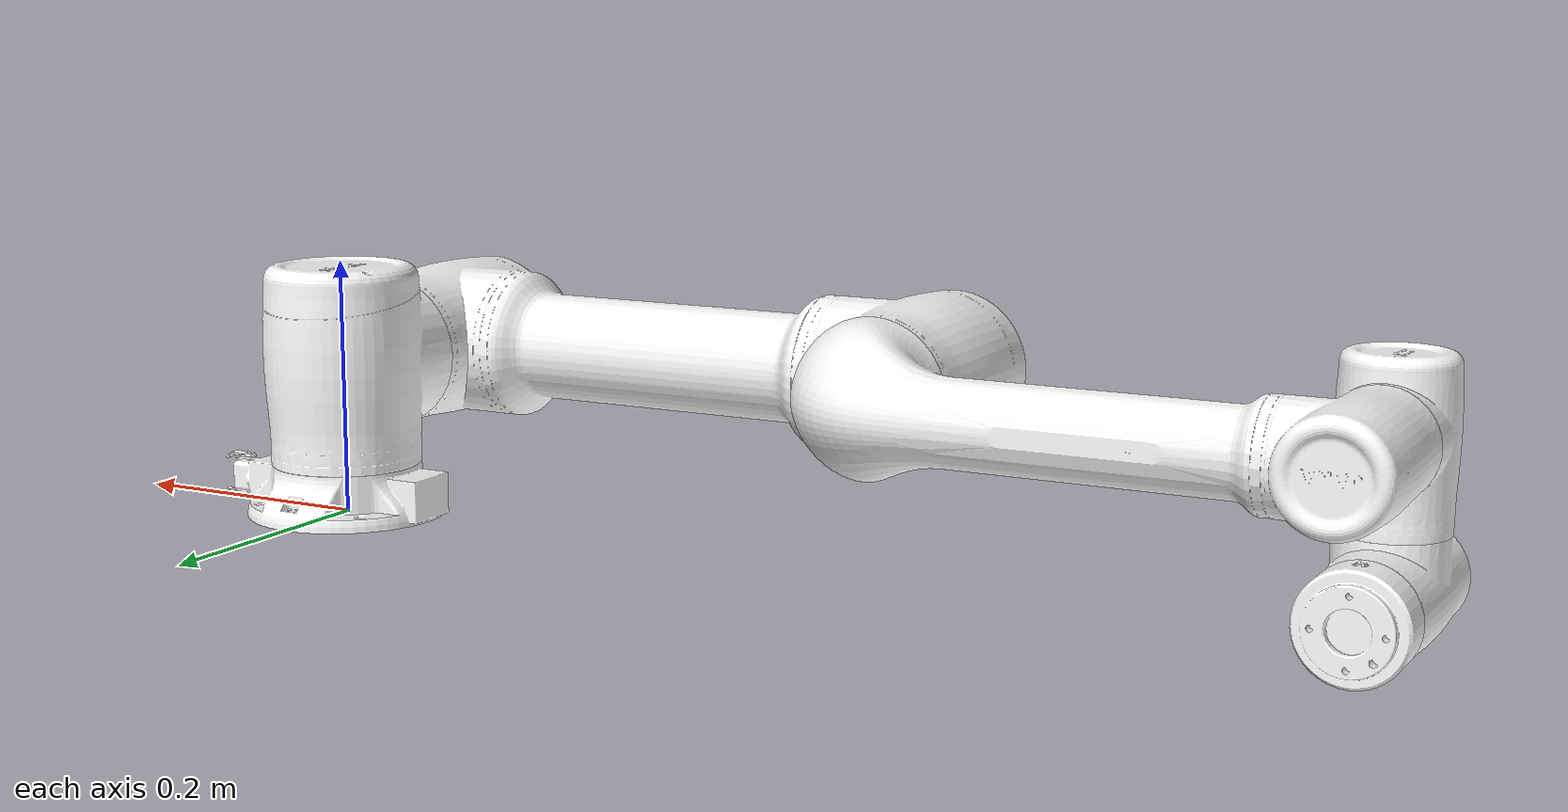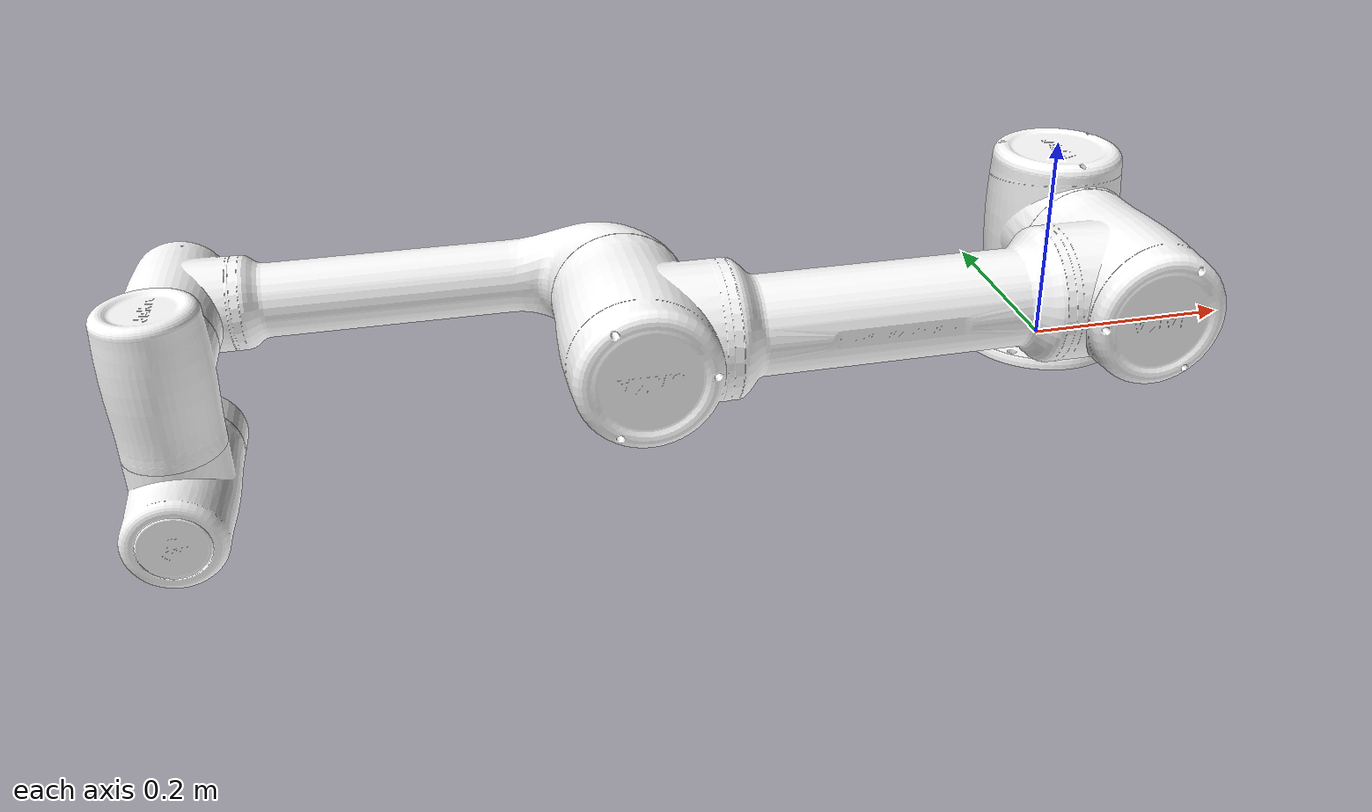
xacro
<?xml version="1.0" encoding="utf-8"?>

<robot name="jaka_zu5" xmlns:xacro="http://wiki.ros.org/xacro">

  <xacro:include filename="$(find jaka_description)/urdf/jaka_zu5/arm_body.xacro" />

  <!-- Macro for inertia matrix -->
  <xacro:macro name="sphere_inertial_matrix" params="m r">
    <inertial>
      <mass value="${m}" />
        <inertia ixx="${2*m*r*r/5}" ixy="0" ixz="0" iyy="${2*m*r*r/5}" iyz="0"  izz="${2*m*r*r/5}" />
    </inertial>
  </xacro:macro>

  <xacro:macro name="cylinder_inertial_matrix" params="m r h">
    <inertial>
      <mass value="${m}" />
        <inertia ixx="${m*(3*r*r+h*h)/12}" ixy = "0" ixz = "0" iyy="${m*(3*r*r+h*h)/12}" iyz = "0" izz="${m*r*r/2}" />
    </inertial>
  </xacro:macro>

  <xacro:macro name="box_inertial_matrix" params="m w h d">
    <inertial>
      <mass value="${m}" />
        <inertia ixx="${m*(h*h+d*d)/12}" ixy = "0" ixz = "0" iyy="${m*(w*w+d*d)/12}" iyz = "0" izz="${m*(w*w+h*h)/12}" />
    </inertial>
  </xacro:macro>

  <!-- ZU5 -->
  <link name="world" />

  <joint name="world_joint" type="fixed">
      <parent link="world" />
      <child link = "base_footprint" />
      <origin xyz="0 0 0" rpy="0 0 0" />
  </joint>

  <link name="base_footprint" >
    </link >

  <xacro:arm_body parent_prefix = "base_footprint">
    <origin xyz="0 0 0" rpy="0 0 0" />
  </xacro:arm_body>

</robot>

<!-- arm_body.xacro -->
<robot xmlns:xacro="http://ros.org/wiki/xacro" name="arm_body">
  <xacro:macro name="arm_body" params="parent_prefix *joint_pose">

  <xacro:arg name="default_velocity" default="1" />

  <link name="arm_base_link">
    <inertial>
      <origin
        xyz="0.00096495 6.33210000011972E-08 0.019553"
        rpy="0 0 0" />
      <mass
        value="0.5146" />
      <inertia
        ixx="0.00062137"
        ixy="-1.25310000000002E-08"
        ixz="3.2162E-06"
        iyy="0.00086635"
        iyz="1.01950000029785E-10"
        izz="0.0013528" />
    </inertial>
    <visual>
      <origin
        xyz="0 0 0"
        rpy="1.5707963267949 0 0" />
      <geometry>
        <mesh
          filename="package://jaka_description/meshes/jaka_zu5_meshes/link_0.STL" />
      </geometry>
      <material
        name="">
        <color
          rgba="1 1 1 1" />
      </material>
    </visual>
    <collision>
      <origin
        xyz="0 0 0"
        rpy="1.5707963267949 0 0" />
      <geometry>
        <mesh
          filename="package://jaka_description/meshes/jaka_zu5_meshes/link_0.STL" />
      </geometry>
    </collision>
  </link>

  <joint name="arm_base_joint" type="fixed">
    <xacro:insert_block name="joint_pose"/>
    <parent link="${parent_prefix}" />
    <child link="arm_base_link" />
    <axis xyz="0 0 0" />
  </joint>

  <link name="shoulder_pan_link">
    <inertial>
      <origin
        xyz="5.1683E-07 -0.0033223 -0.001511"
        rpy="0 0 0" />
      <mass
        value="1.9282" />
      <inertia
        ixx="0.0056433"
        ixy="5.7032E-08"
        ixz="-6.2225E-08"
        iyy="0.0054898"
        iyz="2.0134999999999E-06"
        izz="0.0038887" />
    </inertial>
    <visual>
      <origin
        xyz="0 0 0"
        rpy="1.5707963267949 0 0" />
      <geometry>
        <mesh
          filename="package://jaka_description/meshes/jaka_zu5_meshes/link_1.STL" />
      </geometry>
      <material
        name="">
        <color
          rgba="1 1 1 1" />
      </material>
    </visual>
    <collision>
      <origin
        xyz="0 0 0"
        rpy="1.5707963267949 0 0" />
      <geometry>
        <mesh
          filename="package://jaka_description/meshes/jaka_zu5_meshes/link_1.STL" />
      </geometry>
    </collision>
  </link>

  <joint name="shoulder_pan_joint" type="continuous">
    <origin xyz="0 0 0.12015" rpy="0 0 0" />
    <parent link="arm_base_link" />
    <child link="shoulder_pan_link" />
    <axis xyz="0 0 1" />
    <limit lower="-3" upper="3" effort="49" velocity="$(arg default_velocity)" />
  </joint>

  <link name="shoulder_lift_link">
    <inertial>
      <origin
        xyz="-0.215 -2.05689999912349E-08 0.14315"
        rpy="0 0 0" />
      <mass
        value="5.8409" />
      <inertia
        ixx="0.013221"
        ixy="4.5164E-07"
        ixz="-4.5411E-08"
        iyy="0.20339"
        iyz="-3.02220000002149E-08"
        izz="0.19988" />
    </inertial>
    <visual>
      <origin
        xyz="0 0 0"
        rpy="1.5707963267949 0 0" />
      <geometry>
        <mesh
          filename="package://jaka_description/meshes/jaka_zu5_meshes/link_2.STL" />
      </geometry>
      <material
        name="">
        <color
          rgba="1 1 1 1" />
      </material>
    </visual>
    <collision>
      <origin
        xyz="0 0 0"
        rpy="1.5707963267949 0 0" />
      <geometry>
        <mesh
          filename="package://jaka_description/meshes/jaka_zu5_meshes/link_2.STL" />
      </geometry>
    </collision>
  </link>

  <joint name="shoulder_lift_joint" type="continuous">
    <origin xyz="0 0 0" rpy="1.57079 0 0" />
    <parent link="shoulder_pan_link" />
    <child link="shoulder_lift_link" />
    <axis xyz="0 0 -1" />
    <limit lower="-3" upper="3" effort="49" velocity="$(arg default_velocity)" />
  </joint>

  <link name="elbow_link">
    <inertial>
      <origin
        xyz="-0.19088 -3.84559999999352E-07 0.010588"
        rpy="0 0 0" />
      <mass
        value="2.3018" />
      <inertia
        ixx="0.0028116"
        ixy="2.56400000000176E-07"
        ixz="-0.0028806"
        iyy="0.053035"
        iyz="-6.48900000004372E-09"
        izz="0.052321" />
    </inertial>
    <visual>
      <origin
        xyz="0 0 0"
        rpy="1.5707963267949 0 0" />
      <geometry>
        <mesh
          filename="package://jaka_description/meshes/jaka_zu5_meshes/link_3.STL" />
      </geometry>
      <material
        name="">
        <color
          rgba="1 1 1 1" />
      </material>
    </visual>
    <collision>
      <origin
        xyz="0 0 0"
        rpy="1.5707963267949 0 0" />
      <geometry>
        <mesh
          filename="package://jaka_description/meshes/jaka_zu5_meshes/link_3.STL" />
      </geometry>
    </collision>
  </link>

  <joint name="elbow_joint" type="continuous">
    <origin xyz="-0.430 0 0" rpy="0 0 0" />
    <parent link="shoulder_lift_link" />
    <child link="elbow_link" />
    <axis xyz="0 0 -1" />
    <limit lower="-3" upper="3" effort="49" velocity="$(arg default_velocity)" />
  </joint>

  <link name="wrist_1_link">
    <inertial>
      <origin
        xyz="4.1023E-07 -0.0057996 -0.0026718"
        rpy="0 0 0" />
      <mass
        value="0.70739" />
      <inertia
        ixx="0.0011791"
        ixy="5.5084E-09"
        ixz="1.4807E-09"
        iyy="0.00066568"
        iyz="-1.0639E-05"
        izz="0.0011425" />
    </inertial>
    <visual>
      <origin
        xyz="0 0 0"
        rpy="1.5707963267949 0 0" />
      <geometry>
        <mesh
          filename="package://jaka_description/meshes/jaka_zu5_meshes/link_4.STL" />
      </geometry>
      <material
        name="">
        <color
          rgba="1 1 1 1" />
      </material>
    </visual>
    <collision>
      <origin
        xyz="0 0 0"
        rpy="1.5707963267949 0 0" />
      <geometry>
        <mesh
          filename="package://jaka_description/meshes/jaka_zu5_meshes/link_4.STL" />
      </geometry>
    </collision>
  </link>

  <joint name="wrist_1_joint" type="continuous">
    <origin xyz="-0.3685 0 0.114" rpy="0 0 0" />
    <parent link="elbow_link" />
    <child link="wrist_1_link" />
    <axis xyz="0 0 -1" />
    <limit lower="-3" upper="3" effort="11" velocity="$(arg default_velocity)" />
  </joint>

  <link name="wrist_2_link">
    <inertial>
      <origin
        xyz="-3.0743E-08 -0.0028896 -0.0023422"
        rpy="0 0 0" />
      <mass
        value="0.80693" />
      <inertia
        ixx="0.001655"
        ixy="1.0299E-08"
        ixz="-1.2235E-08"
        iyy="0.0007447"
        iyz="-5.79109999999995E-06"
        izz="0.0016178" />
    </inertial>
    <visual>
      <origin
        xyz="0 0 0"
        rpy="1.5707963267949 0 0" />
      <geometry>
        <mesh
          filename="package://jaka_description/meshes/jaka_zu5_meshes/link_5.STL" />
      </geometry>
      <material
        name="">
        <color
          rgba="1 1 1 1" />
      </material>
    </visual>
    <collision>
      <origin
        xyz="0 0 0"
        rpy="1.5707963267949 0 0" />
      <geometry>
        <mesh
          filename="package://jaka_description/meshes/jaka_zu5_meshes/link_5.STL" />
      </geometry>
    </collision>
  </link>

  <joint name="wrist_2_joint" type="continuous">
    <origin xyz="0 -0.1135 0" rpy="1.57079 3.1415926 0" />
    <parent link="wrist_1_link" />
    <child link="wrist_2_link" />
    <axis xyz="0 0 1" />
    <limit lower="-3" upper="3" effort="11" velocity="$(arg default_velocity)" />
  </joint>

  <link name="wrist_3_link">
    <inertial>
      <origin
        xyz="-2.7624E-05 1.34819999999987E-05 -0.021245"
        rpy="0 0 0" />
      <mass
        value="0.1805" />
      <inertia
        ixx="9.1533E-05"
        ixy="-8.8776E-08"
        ixz="8.1265E-08"
        iyy="9.2197E-05"
        iyz="1.05880000000003E-07"
        izz="0.00014442" />
    </inertial>
    <visual>
      <origin
        xyz="0 0 0"
        rpy="1.5707963267949 0 0" />
      <geometry>
        <mesh
          filename="package://jaka_description/meshes/jaka_zu5_meshes/link_6.STL" />
      </geometry>
      <material
        name="">
        <color
          rgba="1 1 1 1" />
      </material>
    </visual>
    <collision>
      <origin
        xyz="0 0 0"
        rpy="1.5707963267949 0 0" />
      <geometry>
        <mesh
          filename="package://jaka_description/meshes/jaka_zu5_meshes/link_6.STL" />
      </geometry>
    </collision>
  </link>

  <joint name="wrist_3_joint" type="continuous">
    <origin xyz="0 0.107 0" rpy="-1.57079 0 0" />
    <parent link="wrist_2_link" />
    <child link="wrist_3_link" />
    <axis xyz="0 0 1" />
    <limit lower="-3" upper="3" effort="11" velocity="$(arg default_velocity)" />
  </joint>

  <!-- Transmissions for ROS Control -->
  <xacro:macro name="transmission_block" params="joint_name">
    <transmission name="${joint_name}_trans">
      <type>transmission_interface/SimpleTransmission</type>
      <joint name="${joint_name}">
        <hardwareInterface>hardware_interface/PositionJointInterface</hardwareInterface>
      </joint>
      <actuator name="${joint_name}_motor">
        <hardwareInterface>hardware_interface/PositionJointInterface</hardwareInterface>
        <mechanicalReduction>1</mechanicalReduction>
      </actuator>
    </transmission>
  </xacro:macro>

  <xacro:transmission_block joint_name="shoulder_pan_joint"/>
  <xacro:transmission_block joint_name="shoulder_lift_joint"/>
  <xacro:transmission_block joint_name="elbow_joint"/>
  <xacro:transmission_block joint_name="wrist_1_joint"/>
  <xacro:transmission_block joint_name="wrist_2_joint"/>
  <xacro:transmission_block joint_name="wrist_3_joint"/>

	<!-- ros_control plugin -->
  <gazebo>
    <plugin name="gazebo_ros_control" filename="libgazebo_ros_control.so">
      <robotNamespace>/jaka_zu5</robotNamespace>
      <robotSimType>gazebo_ros_control/DefaultRobotHWSim</robotSimType>
      <legacyModeNS>true</legacyModeNS>
    </plugin>
  </gazebo>

  </xacro:macro>
</robot>
